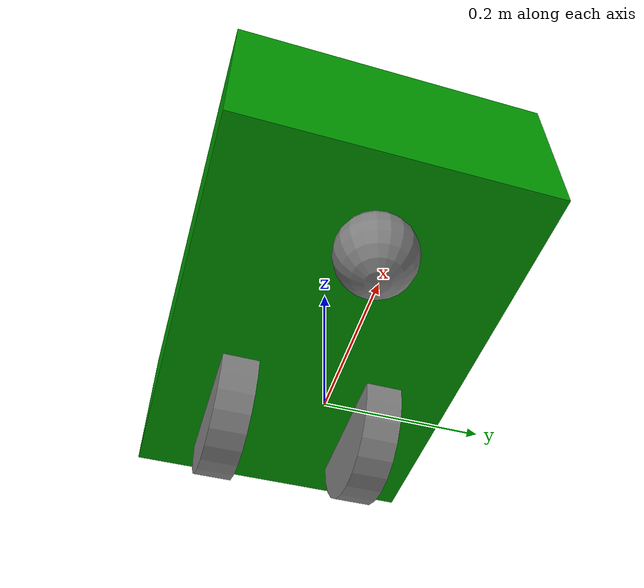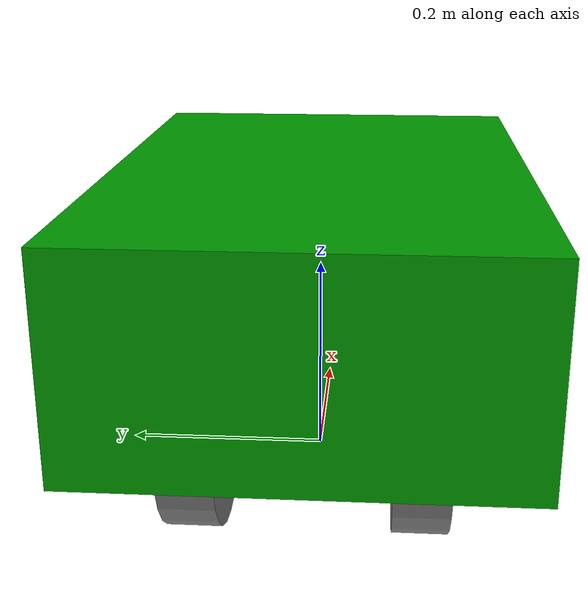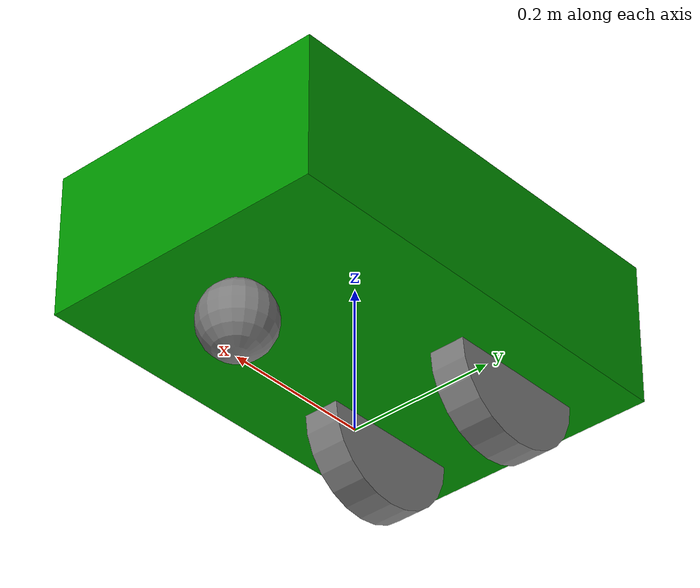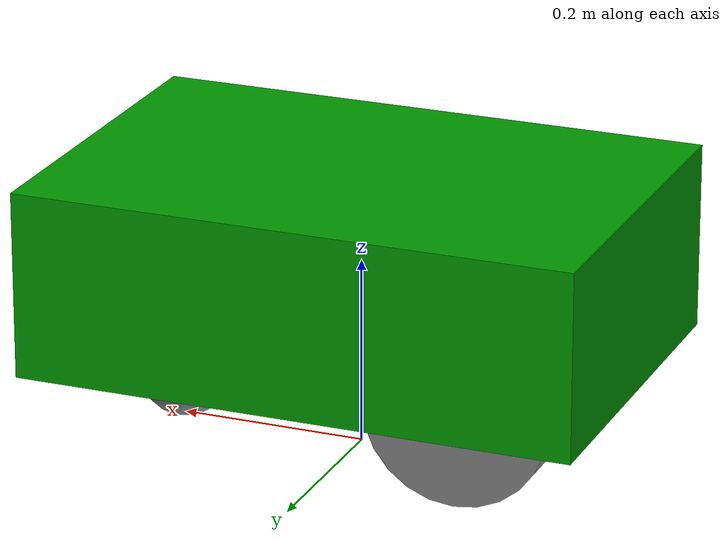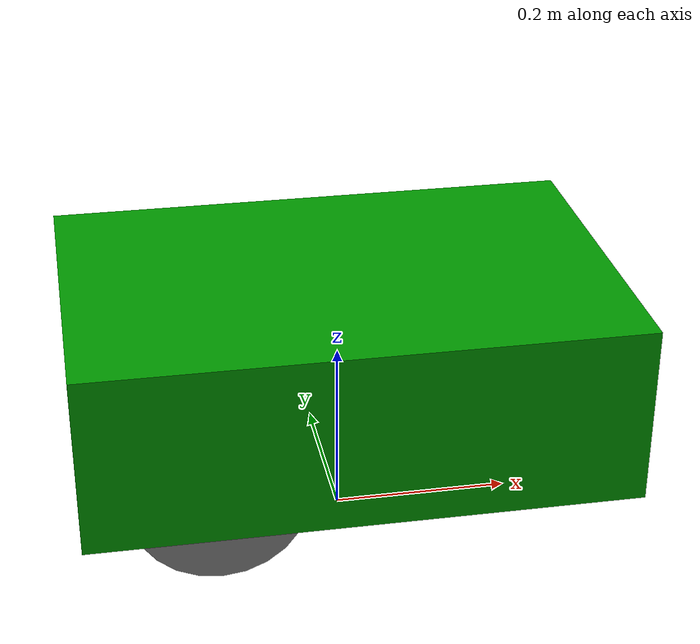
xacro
<?xml version="1.0"?>

<robot name="my_car" xmlns:xacro="http://www.ros.org/wiki/xacro">
    <xacro:include filename="common_properties.xacro"/> <!-- Incluir propiedades comunes -->
    <xacro:include filename="mobile_base.xacro"/> <!-- Incluir definición de la base móvil -->
</robot>

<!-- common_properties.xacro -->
<robot xmlns:xacro="http://www.ros.org/wiki/xacro">
    <!-- Definición de materiales -->

    <material name="green">
        <color rgba="0 0.6 0 1"/> <!-- Color verde -->
    </material>

    <material name="grey">
        <color rgba="0.5 0.5 0.5 1"/> <!-- Color gris -->
    </material>
</robot>

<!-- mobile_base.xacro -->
<robot xmlns:xacro="http://www.ros.org/wiki/xacro">
    <!-- Propiedades reutilizables -->
    <xacro:property name="base_length" value="0.6"/>    <!-- Longitud de la base -->
    <xacro:property name="base_width" value="0.4"/>     <!-- Ancho de la base -->
    <xacro:property name="base_height" value="0.2"/>    <!-- Altura de la base -->
    <xacro:property name="wheel_radius" value="0.1"/>   <!-- Radio de las ruedas -->
    <xacro:property name="wheel_length" value="0.05"/>  <!-- Ancho de las ruedas -->
    <xacro:property name="caster_radius" value="0.05"/> <!-- Radio de la rueda trasera tipo caster -->

    <!-- Macro para la definición de una rueda-->
    <xacro:macro name="wheel_link" params="prefix">
        <link name="wheel_front_${prefix}">
            <visual>
                <geometry>
                    <cylinder radius="${wheel_radius}" length="${wheel_length}"/> <!-- Cilindro con dimensiones definidas por propiedades -->
                </geometry>
                <origin xyz="0 0 0" rpy="${pi / 2.0} 0 0"/> <!-- Orientación para que sea perpendicular al suelo -->
                <material name="grey"/> <!-- Material gris -->
            </visual>
        </link>
    </xacro:macro>

    <!-- Definición del enlace base (base_link) -->
    <link name="base_link">
        <visual>
            <geometry>
                <box size="${base_length} ${base_width} ${base_height}"/> <!-- Caja con dimensiones definidas por propiedades -->
            </geometry>
            <origin xyz="0 0 ${base_height / 2.0}" rpy="0 0 0"/> <!-- Posición del enlace en el marco de coordenadas -->
            <material name="green"/> <!-- Material verde -->
        </visual>
    </link>

    <!-- Definición de las ruedas delanteras -->
    <xacro:wheel_link prefix="left"/> <!-- Rueda delantera izquierda -->
    <xacro:wheel_link prefix="right"/> <!-- Rueda delantera derecha -->

    <!-- Definición de la rueda trasera tipo caster -->
    <link name="caster_wheel">
        <visual>
            <geometry>
                <sphere radius="${caster_radius}"/> <!-- Esfera con radio definido por propiedad -->
            </geometry>
            <origin xyz="0 0 0" rpy="0 0 0"/> <!-- Posición en el marco de coordenadas -->
            <material name="grey"/> <!-- Material gris -->
        </visual>
    </link>

    <!-- Enlace virtual para la base -->
    <link name="base_footprint"/>

    <!-- Definición de las articulaciones -->
    <!-- Articulación de la rueda delantera izquierda -->
    <joint name="wheel_front_left_joint" type="continuous">
        <parent link="base_link"/> <!-- Enlace padre -->
        <child link="wheel_front_left"/> <!-- Enlace hijo -->
        <origin xyz="-${base_length / 4.0} -${base_width / 2.0 - wheel_radius} 0" rpy="0 0 0"/> <!-- Posición de la articulación -->
        <axis xyz="0 1 0"/> <!-- Eje de rotación (Y) -->
    </joint>

    <!-- Articulación de la rueda delantera derecha -->
    <joint name="wheel_front_right_joint" type="continuous">
        <parent link="base_link"/> <!-- Enlace padre -->
        <child link="wheel_front_right"/> <!-- Enlace hijo -->
        <origin xyz="-${base_length / 4.0} ${base_width / 2.0 - wheel_radius} 0" rpy="0 0 0"/> <!-- Posición de la articulación -->
        <axis xyz="0 1 0"/> <!-- Eje de rotación (Y) -->
    </joint>

    <!-- Articulación fija de la rueda trasera tipo caster -->
    <joint name="caster_wheel_joint" type="fixed">
        <parent link="base_link"/> <!-- Enlace padre -->
        <child link="caster_wheel"/> <!-- Enlace hijo -->
        <origin xyz="${base_length / 3.0} 0 -${caster_radius}" rpy="0 0 0"/> <!-- Posición de la articulación -->
    </joint>

    <!-- Articulación fija entre base_footprint y base_link -->
    <joint name="virtual_base_link_joint" type="fixed">
        <parent link="base_footprint"/> <!-- Enlace padre -->
        <child link="base_link"/> <!-- Enlace hijo -->
        <origin xyz="0 0 ${base_height / 2.0}" rpy="0 0 0"/> <!-- Posición de la articulación -->
    </joint>

</robot>
